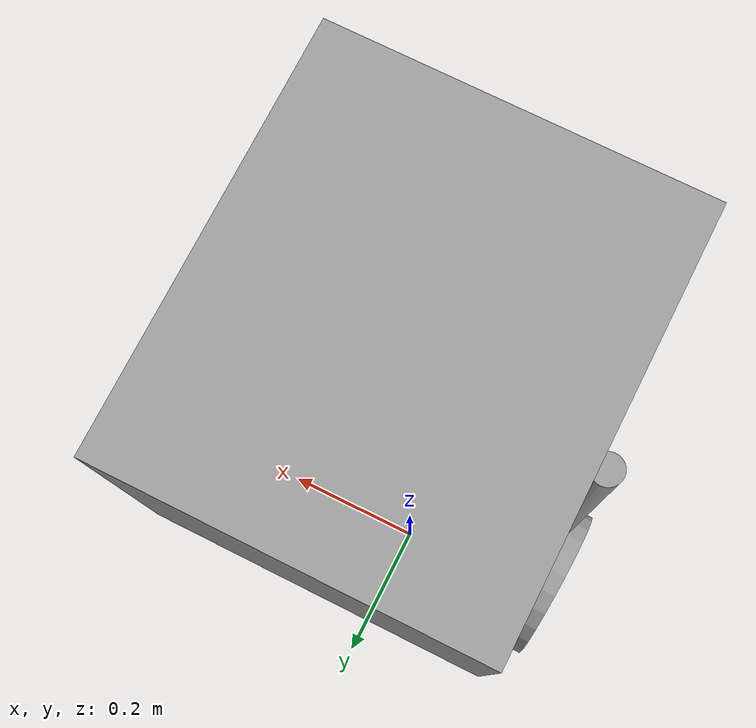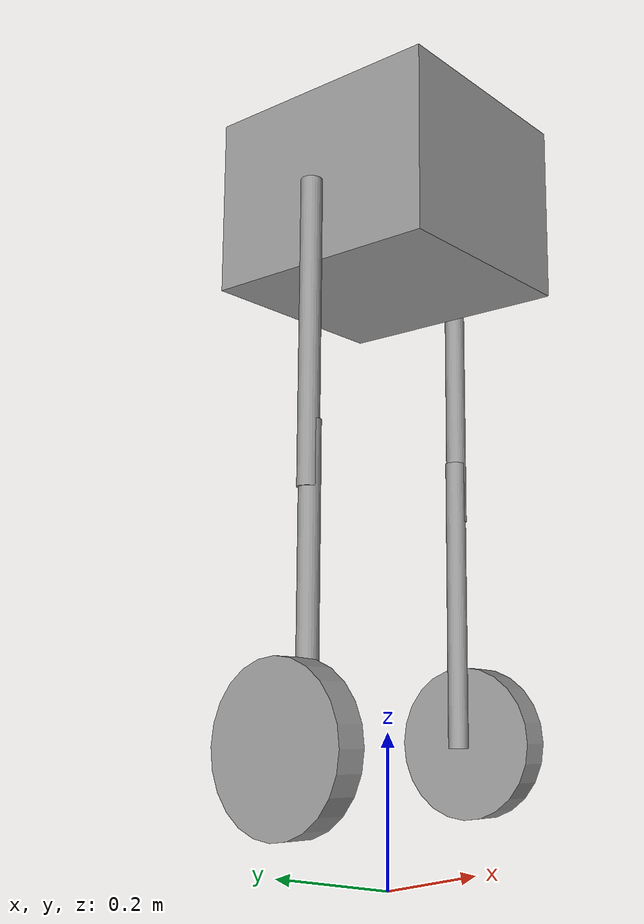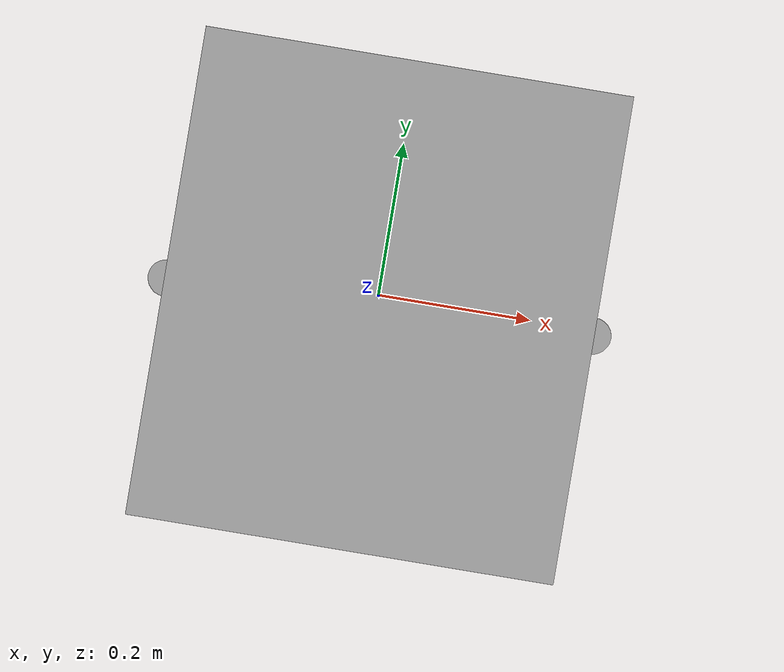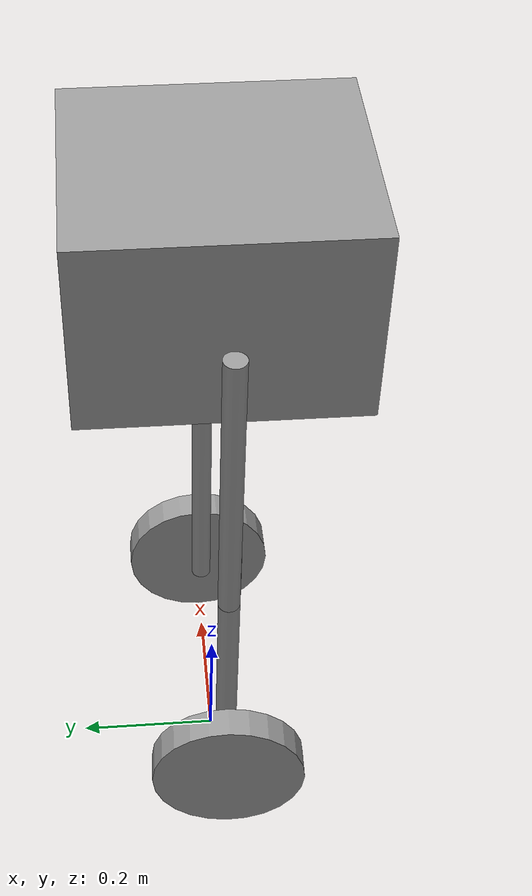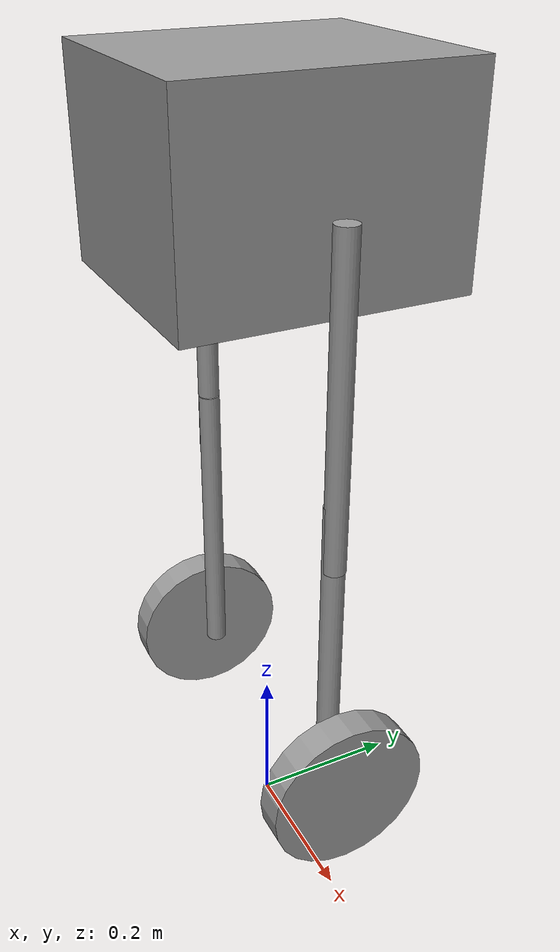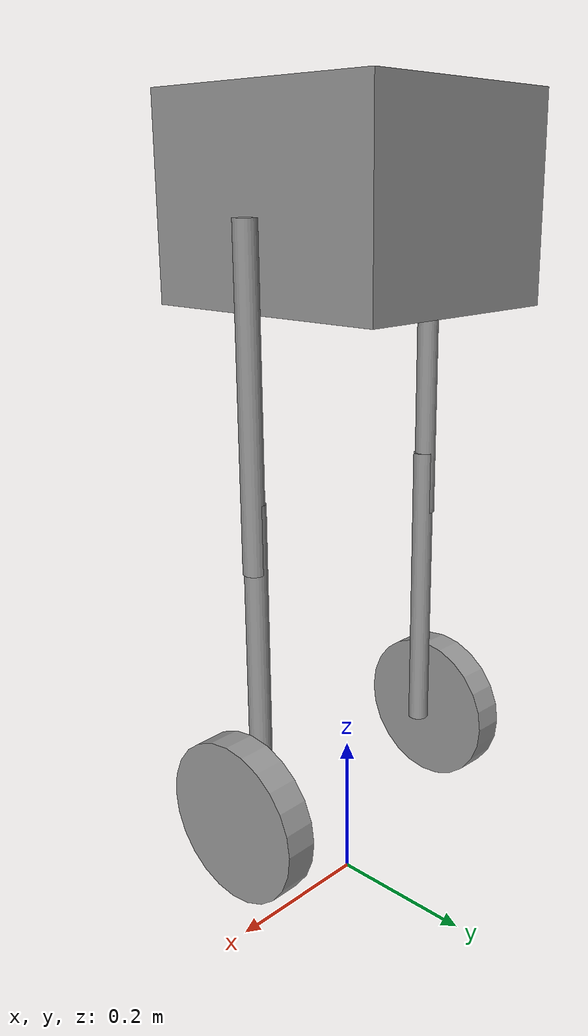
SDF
<?xml version='1.0'?>
<sdf version='1.6'>
  <model name='Movee'>
<pose>0 0 0.5 0 0 0</pose>
    <link name='link_1'>
      <inertial>
        <mass>0.000340989</mass>
        <inertia>
          <ixx>4.90632e-06</ixx>
          <ixy>0</ixy>
          <ixz>0</ixz>
          <iyy>4.90632e-06</iyy>
          <iyz>0</iyz>
          <izz>3.53813e-08</izz>
        </inertia>
        <pose frame=''>0 0 0 0 -0 0</pose>
      </inertial>
      <pose frame=''>0.169419 0.00441 0.21214 0 -0 0</pose>
      <visual name='visual'>
        <pose frame=''>0 0 0 0 -0 0</pose>
        <geometry>
          <cylinder>
            <radius>0.0144056</radius>
            <length>0.414776</length>
          </cylinder>
        </geometry>
        <material>
          <lighting>1</lighting>
          <script>
            <uri>file://media/materials/scripts/gazebo.material</uri>
            <name>Gazebo/Grey</name>
          </script>
          <emissive>0 0 0 1</emissive>
        </material>
        <transparency>0</transparency>
        <cast_shadows>1</cast_shadows>
      </visual>
      <collision name='collision'>
        <laser_retro>0</laser_retro>
        <max_contacts>10</max_contacts>
        <pose frame=''>0 0 0 0 -0 0</pose>
        <geometry>
          <cylinder>
            <radius>0.014406</radius>
            <length>0.414776</length>
          </cylinder>
        </geometry>
        <surface>
          <friction>
            <ode>
              <mu>1</mu>
              <mu2>1</mu2>
              <fdir1>0 0 0</fdir1>
              <slip1>0</slip1>
              <slip2>0</slip2>
            </ode>
            <torsional>
              <coefficient>1</coefficient>
              <patch_radius>0</patch_radius>
              <surface_radius>0</surface_radius>
              <use_patch_radius>1</use_patch_radius>
              <ode>
                <slip>0</slip>
              </ode>
            </torsional>
          </friction>
          <bounce>
            <restitution_coefficient>0</restitution_coefficient>
            <threshold>1e+06</threshold>
          </bounce>
          <contact>
            <collide_without_contact>0</collide_without_contact>
            <collide_without_contact_bitmask>1</collide_without_contact_bitmask>
            <collide_bitmask>1</collide_bitmask>
            <ode>
              <soft_cfm>0</soft_cfm>
              <soft_erp>0.2</soft_erp>
              <kp>1e+13</kp>
              <kd>1</kd>
              <max_vel>0.01</max_vel>
              <min_depth>0</min_depth>
            </ode>
            <bullet>
              <split_impulse>1</split_impulse>
              <split_impulse_penetration_threshold>-0.01</split_impulse_penetration_threshold>
              <soft_cfm>0</soft_cfm>
              <soft_erp>0.2</soft_erp>
              <kp>1e+13</kp>
              <kd>1</kd>
            </bullet>
          </contact>
        </surface>
      </collision>
    </link>
    <link name='link_1_clone'>
      <inertial>
        <mass>0.000340989</mass>
        <inertia>
          <ixx>4.90632e-06</ixx>
          <ixy>0</ixy>
          <ixz>0</ixz>
          <iyy>4.90632e-06</iyy>
          <iyz>0</iyz>
          <izz>3.53813e-08</izz>
        </inertia>
        <pose frame=''>0 0 0 0 -0 0</pose>
      </inertial>
      <pose frame=''>0.167296 0.004387 -0.11507 0 -0 0</pose>
      <visual name='visual'>
        <pose frame=''>0 0 0 0 -0 0</pose>
        <geometry>
          <cylinder>
            <radius>0.0144056</radius>
            <length>0.414776</length>
          </cylinder>
        </geometry>
        <material>
          <lighting>1</lighting>
          <script>
            <uri>file://media/materials/scripts/gazebo.material</uri>
            <name>Gazebo/Grey</name>
          </script>
          <shader type='pixel'/>
          <emissive>0 0 0 1</emissive>
        </material>
        <transparency>0</transparency>
        <cast_shadows>1</cast_shadows>
      </visual>
      <collision name='collision'>
        <laser_retro>0</laser_retro>
        <max_contacts>10</max_contacts>
        <pose frame=''>0 0 0 0 -0 0</pose>
        <geometry>
          <cylinder>
            <radius>0.014406</radius>
            <length>0.414776</length>
          </cylinder>
        </geometry>
        <surface>
          <friction>
            <ode>
              <mu>1</mu>
              <mu2>1</mu2>
              <fdir1>0 0 0</fdir1>
              <slip1>0</slip1>
              <slip2>0</slip2>
            </ode>
            <torsional>
              <coefficient>1</coefficient>
              <patch_radius>0</patch_radius>
              <surface_radius>0</surface_radius>
              <use_patch_radius>1</use_patch_radius>
              <ode>
                <slip>0</slip>
              </ode>
            </torsional>
          </friction>
          <bounce>
            <restitution_coefficient>0</restitution_coefficient>
            <threshold>1e+06</threshold>
          </bounce>
          <contact>
            <collide_without_contact>0</collide_without_contact>
            <collide_without_contact_bitmask>1</collide_without_contact_bitmask>
            <collide_bitmask>1</collide_bitmask>
            <ode>
              <soft_cfm>0</soft_cfm>
              <soft_erp>0.2</soft_erp>
              <kp>1e+13</kp>
              <kd>1</kd>
              <max_vel>0.01</max_vel>
              <min_depth>0</min_depth>
            </ode>
            <bullet>
              <split_impulse>1</split_impulse>
              <split_impulse_penetration_threshold>-0.01</split_impulse_penetration_threshold>
              <soft_cfm>0</soft_cfm>
              <soft_erp>0.2</soft_erp>
              <kp>1e+13</kp>
              <kd>1</kd>
            </bullet>
          </contact>
        </surface>
      </collision>
    </link>
    <link name='link_1_clone_0'>
      <inertial>
        <mass>0.000340989</mass>
        <inertia>
          <ixx>4.90632e-06</ixx>
          <ixy>0</ixy>
          <ixz>0</ixz>
          <iyy>4.90632e-06</iyy>
          <iyz>0</iyz>
          <izz>3.53813e-08</izz>
        </inertia>
        <pose frame=''>0 0 0 0 -0 0</pose>
      </inertial>
      <pose frame=''>-0.169221 -0.005562 0.212141 0 -0 0</pose>
      <visual name='visual'>
        <pose frame=''>0 0 0 0 -0 0</pose>
        <geometry>
          <cylinder>
            <radius>0.0144056</radius>
            <length>0.414776</length>
          </cylinder>
        </geometry>
        <material>
          <lighting>1</lighting>
          <script>
            <uri>file://media/materials/scripts/gazebo.material</uri>
            <name>Gazebo/Grey</name>
          </script>
          <emissive>0 0 0 1</emissive>
          <shader type='pixel'/>
        </material>
        <transparency>0</transparency>
        <cast_shadows>1</cast_shadows>
      </visual>
      <collision name='collision'>
        <laser_retro>0</laser_retro>
        <max_contacts>10</max_contacts>
        <pose frame=''>0 0 0 0 -0 0</pose>
        <geometry>
          <cylinder>
            <radius>0.014406</radius>
            <length>0.414776</length>
          </cylinder>
        </geometry>
        <surface>
          <friction>
            <ode>
              <mu>1</mu>
              <mu2>1</mu2>
              <fdir1>0 0 0</fdir1>
              <slip1>0</slip1>
              <slip2>0</slip2>
            </ode>
            <torsional>
              <coefficient>1</coefficient>
              <patch_radius>0</patch_radius>
              <surface_radius>0</surface_radius>
              <use_patch_radius>1</use_patch_radius>
              <ode>
                <slip>0</slip>
              </ode>
            </torsional>
          </friction>
          <bounce>
            <restitution_coefficient>0</restitution_coefficient>
            <threshold>1e+06</threshold>
          </bounce>
          <contact>
            <collide_without_contact>0</collide_without_contact>
            <collide_without_contact_bitmask>1</collide_without_contact_bitmask>
            <collide_bitmask>1</collide_bitmask>
            <ode>
              <soft_cfm>0</soft_cfm>
              <soft_erp>0.2</soft_erp>
              <kp>1e+13</kp>
              <kd>1</kd>
              <max_vel>0.01</max_vel>
              <min_depth>0</min_depth>
            </ode>
            <bullet>
              <split_impulse>1</split_impulse>
              <split_impulse_penetration_threshold>-0.01</split_impulse_penetration_threshold>
              <soft_cfm>0</soft_cfm>
              <soft_erp>0.2</soft_erp>
              <kp>1e+13</kp>
              <kd>1</kd>
            </bullet>
          </contact>
        </surface>
      </collision>
    </link>
    <link name='link_1_clone_clone'>
      <inertial>
        <mass>0.000340989</mass>
        <inertia>
          <ixx>4.90632e-06</ixx>
          <ixy>0</ixy>
          <ixz>0</ixz>
          <iyy>4.90632e-06</iyy>
          <iyz>0</iyz>
          <izz>3.53813e-08</izz>
        </inertia>
        <pose frame=''>0 0 0 0 -0 0</pose>
      </inertial>
      <pose frame=''>-0.166732 -0.006113 -0.11507 0 -0 0</pose>
      <visual name='visual'>
        <pose frame=''>0 0 0 0 -0 0</pose>
        <geometry>
          <cylinder>
            <radius>0.0144056</radius>
            <length>0.414776</length>
          </cylinder>
        </geometry>
        <material>
          <lighting>1</lighting>
          <script>
            <uri>file://media/materials/scripts/gazebo.material</uri>
            <name>Gazebo/Grey</name>
          </script>
          <shader type='pixel'/>
          <emissive>0 0 0 1</emissive>
        </material>
        <transparency>0</transparency>
        <cast_shadows>1</cast_shadows>
      </visual>
      <collision name='collision'>
        <laser_retro>0</laser_retro>
        <max_contacts>10</max_contacts>
        <pose frame=''>0 0 0 0 -0 0</pose>
        <geometry>
          <cylinder>
            <radius>0.014406</radius>
            <length>0.414776</length>
          </cylinder>
        </geometry>
        <surface>
          <friction>
            <ode>
              <mu>1</mu>
              <mu2>1</mu2>
              <fdir1>0 0 0</fdir1>
              <slip1>0</slip1>
              <slip2>0</slip2>
            </ode>
            <torsional>
              <coefficient>1</coefficient>
              <patch_radius>0</patch_radius>
              <surface_radius>0</surface_radius>
              <use_patch_radius>1</use_patch_radius>
              <ode>
                <slip>0</slip>
              </ode>
            </torsional>
          </friction>
          <bounce>
            <restitution_coefficient>0</restitution_coefficient>
            <threshold>1e+06</threshold>
          </bounce>
          <contact>
            <collide_without_contact>0</collide_without_contact>
            <collide_without_contact_bitmask>1</collide_without_contact_bitmask>
            <collide_bitmask>1</collide_bitmask>
            <ode>
              <soft_cfm>0</soft_cfm>
              <soft_erp>0.2</soft_erp>
              <kp>1e+13</kp>
              <kd>1</kd>
              <max_vel>0.01</max_vel>
              <min_depth>0</min_depth>
            </ode>
            <bullet>
              <split_impulse>1</split_impulse>
              <split_impulse_penetration_threshold>-0.01</split_impulse_penetration_threshold>
              <soft_cfm>0</soft_cfm>
              <soft_erp>0.2</soft_erp>
              <kp>1e+13</kp>
              <kd>1</kd>
            </bullet>
          </contact>
        </surface>
      </collision>
    </link>
    <link name='link_2'>
      <inertial>
        <mass>0.0268287</mass>
        <inertia>
          <ixx>0.000413106</ixx>
          <ixy>0</ixy>
          <ixz>0</ixz>
          <iyy>0.000350194</iyy>
          <iyz>0</iyz>
          <izz>0.000482902</izz>
        </inertia>
        <pose frame=''>0 0 0 0 -0 0</pose>
      </inertial>
      <pose frame=''>-0.000576 0.002589 0.437089 0 -0 0</pose>
      <visual name='visual'>
        <pose frame=''>0 0 0 0 -0 0</pose>
        <geometry>
          <box>
            <size>0.306475 0.349381 0.250417</size>
          </box>
        </geometry>
        <material>
          <lighting>1</lighting>
          <script>
            <uri>file://media/materials/scripts/gazebo.material</uri>
            <name>Gazebo/Grey</name>
          </script>
          <emissive>0 0 0 1</emissive>
        </material>
        <transparency>0</transparency>
        <cast_shadows>1</cast_shadows>
      </visual>
      <collision name='collision'>
        <laser_retro>0</laser_retro>
        <max_contacts>10</max_contacts>
        <pose frame=''>0 0 0 0 -0 0</pose>
        <geometry>
          <box>
            <size>0.306475 0.349381 0.250417</size>
          </box>
        </geometry>
        <surface>
          <friction>
            <ode>
              <mu>1</mu>
              <mu2>1</mu2>
              <fdir1>0 0 0</fdir1>
              <slip1>0</slip1>
              <slip2>0</slip2>
            </ode>
            <torsional>
              <coefficient>1</coefficient>
              <patch_radius>0</patch_radius>
              <surface_radius>0</surface_radius>
              <use_patch_radius>1</use_patch_radius>
              <ode>
                <slip>0</slip>
              </ode>
            </torsional>
          </friction>
          <bounce>
            <restitution_coefficient>0</restitution_coefficient>
            <threshold>1e+06</threshold>
          </bounce>
          <contact>
            <collide_without_contact>0</collide_without_contact>
            <collide_without_contact_bitmask>1</collide_without_contact_bitmask>
            <collide_bitmask>1</collide_bitmask>
            <ode>
              <soft_cfm>0</soft_cfm>
              <soft_erp>0.2</soft_erp>
              <kp>1e+13</kp>
              <kd>1</kd>
              <max_vel>0.01</max_vel>
              <min_depth>0</min_depth>
            </ode>
            <bullet>
              <split_impulse>1</split_impulse>
              <split_impulse_penetration_threshold>-0.01</split_impulse_penetration_threshold>
              <soft_cfm>0</soft_cfm>
              <soft_erp>0.2</soft_erp>
              <kp>1e+13</kp>
              <kd>1</kd>
            </bullet>
          </contact>
        </surface>
      </collision>
    </link>
    <link name='link_3'>
      <inertial>
        <mass>0.00194034</mass>
        <inertia>
          <ixx>5.89339e-06</ixx>
          <ixy>0</ixy>
          <ixz>0</ixz>
          <iyy>5.89339e-06</iyy>
          <iyz>0</iyz>
          <izz>1.12133e-05</izz>
        </inertia>
        <pose frame=''>0 0 0 0 -0 0</pose>
      </inertial>
      <pose frame=''>0.204868 0.007062 -0.315648 3.14159 1.56244 3.14159</pose>
      <visual name='visual'>
        <pose frame=''>0 0 0 0 -0 0</pose>
        <geometry>
          <cylinder>
            <radius>0.107509</radius>
            <length>0.0421107</length>
          </cylinder>
        </geometry>
        <material>
          <lighting>1</lighting>
          <script>
            <uri>file://media/materials/scripts/gazebo.material</uri>
            <name>Gazebo/Grey</name>
          </script>
          <emissive>0 0 0 1</emissive>
        </material>
        <transparency>0</transparency>
        <cast_shadows>1</cast_shadows>
      </visual>
      <collision name='collision'>
        <laser_retro>0</laser_retro>
        <max_contacts>10</max_contacts>
        <pose frame=''>0 0 0 0 -0 0</pose>
        <geometry>
          <cylinder>
            <radius>0.107509</radius>
            <length>0.042111</length>
          </cylinder>
        </geometry>
        <surface>
          <friction>
            <ode>
              <mu>1</mu>
              <mu2>1</mu2>
              <fdir1>0 0 0</fdir1>
              <slip1>0</slip1>
              <slip2>0</slip2>
            </ode>
            <torsional>
              <coefficient>1</coefficient>
              <patch_radius>0</patch_radius>
              <surface_radius>0</surface_radius>
              <use_patch_radius>1</use_patch_radius>
              <ode>
                <slip>0</slip>
              </ode>
            </torsional>
          </friction>
          <bounce>
            <restitution_coefficient>0</restitution_coefficient>
            <threshold>1e+06</threshold>
          </bounce>
          <contact>
            <collide_without_contact>0</collide_without_contact>
            <collide_without_contact_bitmask>1</collide_without_contact_bitmask>
            <collide_bitmask>1</collide_bitmask>
            <ode>
              <soft_cfm>0</soft_cfm>
              <soft_erp>0.2</soft_erp>
              <kp>1e+13</kp>
              <kd>1</kd>
              <max_vel>0.01</max_vel>
              <min_depth>0</min_depth>
            </ode>
            <bullet>
              <split_impulse>1</split_impulse>
              <split_impulse_penetration_threshold>-0.01</split_impulse_penetration_threshold>
              <soft_cfm>0</soft_cfm>
              <soft_erp>0.2</soft_erp>
              <kp>1e+13</kp>
              <kd>1</kd>
            </bullet>
          </contact>
        </surface>
      </collision>
    </link>
    <link name='link_3_clone'>
      <inertial>
        <mass>0.00194034</mass>
        <inertia>
          <ixx>5.89339e-06</ixx>
          <ixy>0</ixy>
          <ixz>0</ixz>
          <iyy>5.89339e-06</iyy>
          <iyz>0</iyz>
          <izz>1.12133e-05</izz>
        </inertia>
        <pose frame=''>0 0 0 0 -0 0</pose>
      </inertial>
      <pose frame=''>-0.205054 -0.006774 -0.315582 0.040024 1.56244 3.14159</pose>
      <visual name='visual'>
        <pose frame=''>0 0 0 0 -0 0</pose>
        <geometry>
          <cylinder>
            <radius>0.107509</radius>
            <length>0.0421107</length>
          </cylinder>
        </geometry>
        <material>
          <lighting>1</lighting>
          <script>
            <uri>file://media/materials/scripts/gazebo.material</uri>
            <name>Gazebo/Grey</name>
          </script>
          <emissive>0 0 0 1</emissive>
          <shader type='pixel'/>
        </material>
        <transparency>0</transparency>
        <cast_shadows>1</cast_shadows>
      </visual>
      <collision name='collision'>
        <laser_retro>0</laser_retro>
        <max_contacts>10</max_contacts>
        <pose frame=''>0 0 0 0 -0 0</pose>
        <geometry>
          <cylinder>
            <radius>0.107509</radius>
            <length>0.042111</length>
          </cylinder>
        </geometry>
        <surface>
          <friction>
            <ode>
              <mu>1</mu>
              <mu2>1</mu2>
              <fdir1>0 0 0</fdir1>
              <slip1>0</slip1>
              <slip2>0</slip2>
            </ode>
            <torsional>
              <coefficient>1</coefficient>
              <patch_radius>0</patch_radius>
              <surface_radius>0</surface_radius>
              <use_patch_radius>1</use_patch_radius>
              <ode>
                <slip>0</slip>
              </ode>
            </torsional>
          </friction>
          <bounce>
            <restitution_coefficient>0</restitution_coefficient>
            <threshold>1e+06</threshold>
          </bounce>
          <contact>
            <collide_without_contact>0</collide_without_contact>
            <collide_without_contact_bitmask>1</collide_without_contact_bitmask>
            <collide_bitmask>1</collide_bitmask>
            <ode>
              <soft_cfm>0</soft_cfm>
              <soft_erp>0.2</soft_erp>
              <kp>1e+13</kp>
              <kd>1</kd>
              <max_vel>0.01</max_vel>
              <min_depth>0</min_depth>
            </ode>
            <bullet>
              <split_impulse>1</split_impulse>
              <split_impulse_penetration_threshold>-0.01</split_impulse_penetration_threshold>
              <soft_cfm>0</soft_cfm>
              <soft_erp>0.2</soft_erp>
              <kp>1e+13</kp>
              <kd>1</kd>
            </bullet>
          </contact>
        </surface>
      </collision>
    </link>
    <joint name='knee_pivot_left' type='revolute'>
      <parent>link_1</parent>
      <child>link_1_clone</child>
      <pose frame=''>0 0 0.14 0 -0 0</pose>
      <axis>
        <xyz>1 0 0</xyz>
        <use_parent_model_frame>0</use_parent_model_frame>
        <limit>
          <lower>-1.79769e+308</lower>
          <upper>1.79769e+308</upper>
          <effort>-1</effort>
          <velocity>-1</velocity>
        </limit>
        <dynamics>
          <spring_reference>0</spring_reference>
          <spring_stiffness>0</spring_stiffness>
          <damping>0</damping>
          <friction>0</friction>
        </dynamics>
      </axis>
      <physics>
        <ode>
          <limit>
            <cfm>0</cfm>
            <erp>0.2</erp>
          </limit>
          <suspension>
            <cfm>0</cfm>
            <erp>0.2</erp>
          </suspension>
        </ode>
      </physics>
    </joint>
    <joint name='knee_pivot_right' type='revolute'>
      <parent>link_1_clone_0</parent>
      <child>link_1_clone_clone</child>
      <pose frame=''>0 0 0.14 0 -0 0</pose>
      <axis>
        <xyz>1 0 0</xyz>
        <use_parent_model_frame>0</use_parent_model_frame>
        <limit>
          <lower>-1.79769e+308</lower>
          <upper>1.79769e+308</upper>
          <effort>-1</effort>
          <velocity>-1</velocity>
        </limit>
        <dynamics>
          <spring_reference>0</spring_reference>
          <spring_stiffness>0</spring_stiffness>
          <damping>0</damping>
          <friction>0</friction>
        </dynamics>
      </axis>
      <physics>
        <ode>
          <limit>
            <cfm>0</cfm>
            <erp>0.2</erp>
          </limit>
          <suspension>
            <cfm>0</cfm>
            <erp>0.2</erp>
          </suspension>
        </ode>
      </physics>
    </joint>
    <joint name='wheel_pivot_left' type='revolute'>
      <parent>link_1_clone</parent>
      <child>link_3</child>
      <pose frame=''>0 0 -0.04 0 -0 0</pose>
      <axis>
        <xyz>0 0 1</xyz>
        <use_parent_model_frame>0</use_parent_model_frame>
        <limit>
          <lower>-1.79769e+308</lower>
          <upper>1.79769e+308</upper>
          <effort>-1</effort>
          <velocity>-1</velocity>
        </limit>
        <dynamics>
          <spring_reference>0</spring_reference>
          <spring_stiffness>0</spring_stiffness>
          <damping>0</damping>
          <friction>0</friction>
        </dynamics>
      </axis>
      <physics>
        <ode>
          <limit>
            <cfm>0</cfm>
            <erp>0.2</erp>
          </limit>
          <suspension>
            <cfm>0</cfm>
            <erp>0.2</erp>
          </suspension>
        </ode>
      </physics>
    </joint>
    <joint name='wheel_pivot_right' type='revolute'>
      <parent>link_1_clone_clone</parent>
      <child>link_3_clone</child>
      <pose frame=''>0 0 -0.04 0 -0 0</pose>
      <axis>
        <xyz>0 0 1</xyz>
        <use_parent_model_frame>0</use_parent_model_frame>
        <limit>
          <lower>-1.79769e+308</lower>
          <upper>1.79769e+308</upper>
          <effort>-1</effort>
          <velocity>-1</velocity>
        </limit>
        <dynamics>
          <spring_reference>0</spring_reference>
          <spring_stiffness>0</spring_stiffness>
          <damping>0</damping>
          <friction>0</friction>
        </dynamics>
      </axis>
      <physics>
        <ode>
          <limit>
            <cfm>0</cfm>
            <erp>0.2</erp>
          </limit>
          <suspension>
            <cfm>0</cfm>
            <erp>0.2</erp>
          </suspension>
        </ode>
      </physics>
    </joint>
    <joint name='hip_pivot_left' type='revolute'>
      <parent>link_2</parent>
      <child>link_1</child>
      <pose frame=''>0 0 0.19 0 -0 0</pose>
      <axis>
        <xyz>1 0 0</xyz>
        <use_parent_model_frame>0</use_parent_model_frame>
        <limit>
          <lower>-1.79769e+308</lower>
          <upper>1.79769e+308</upper>
          <effort>-1</effort>
          <velocity>-1</velocity>
        </limit>
        <dynamics>
          <spring_reference>0</spring_reference>
          <spring_stiffness>0</spring_stiffness>
          <damping>0</damping>
          <friction>0</friction>
        </dynamics>
      </axis>
      <physics>
        <ode>
          <limit>
            <cfm>0</cfm>
            <erp>0.2</erp>
          </limit>
          <suspension>
            <cfm>0</cfm>
            <erp>0.2</erp>
          </suspension>
        </ode>
      </physics>
    </joint>
    <joint name='hip_pivot_right' type='revolute'>
      <parent>link_2</parent>
      <child>link_1_clone_0</child>
      <pose frame=''>0 0 0.19 0 -0 0</pose>
      <axis>
        <xyz>1 0 0</xyz>
        <use_parent_model_frame>0</use_parent_model_frame>
        <limit>
          <lower>-1.79769e+308</lower>
          <upper>1.79769e+308</upper>
          <effort>-1</effort>
          <velocity>-1</velocity>
        </limit>
        <dynamics>
          <spring_reference>0</spring_reference>
          <spring_stiffness>0</spring_stiffness>
          <damping>0</damping>
          <friction>0</friction>
        </dynamics>
      </axis>
      <physics>
        <ode>
          <limit>
            <cfm>0</cfm>
            <erp>0.2</erp>
          </limit>
          <suspension>
            <cfm>0</cfm>
            <erp>0.2</erp>
          </suspension>
        </ode>
      </physics>
    </joint>
    <static>0</static>
    <allow_auto_disable>1</allow_auto_disable>
  </model>
</sdf>
